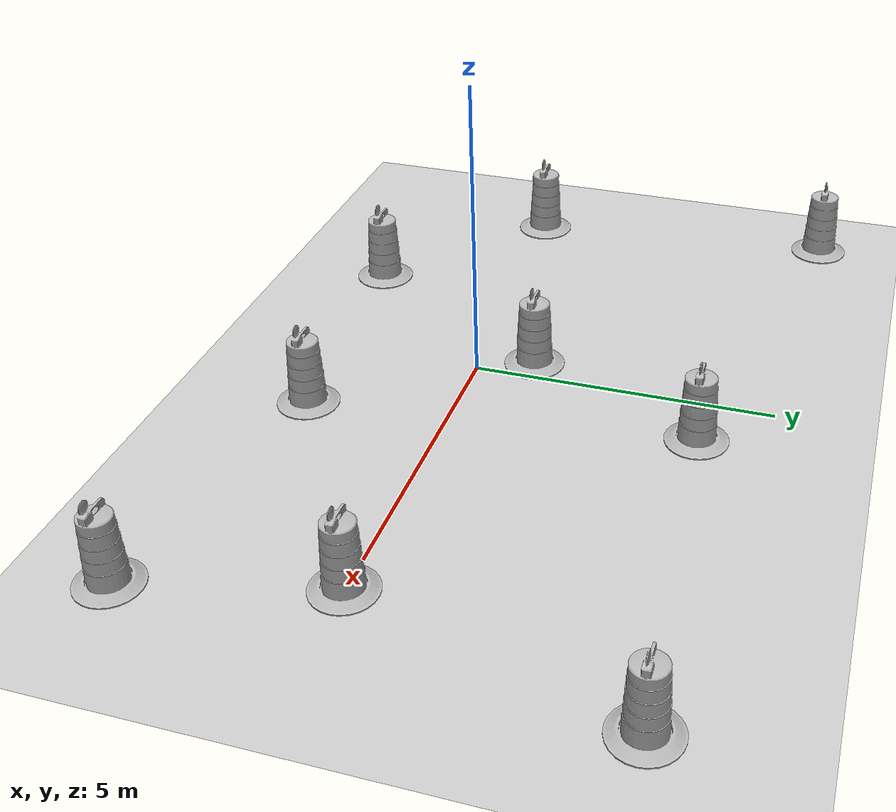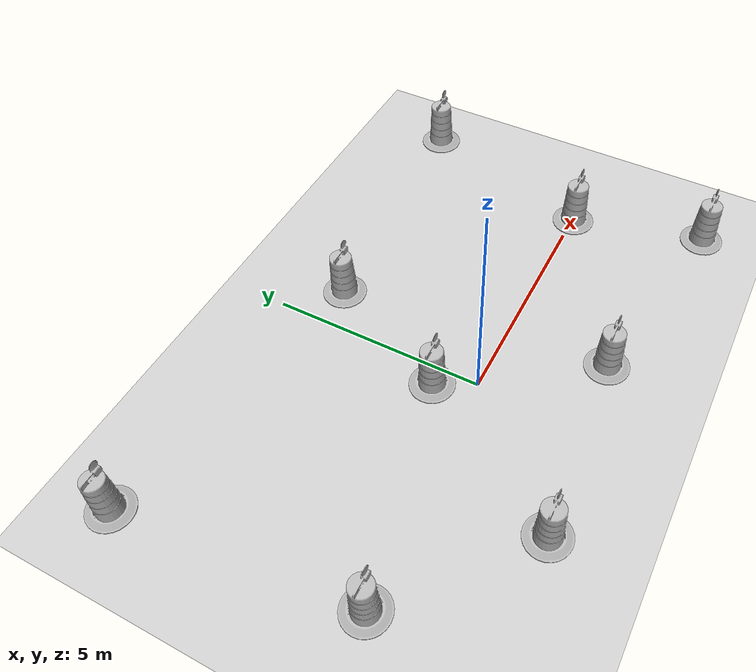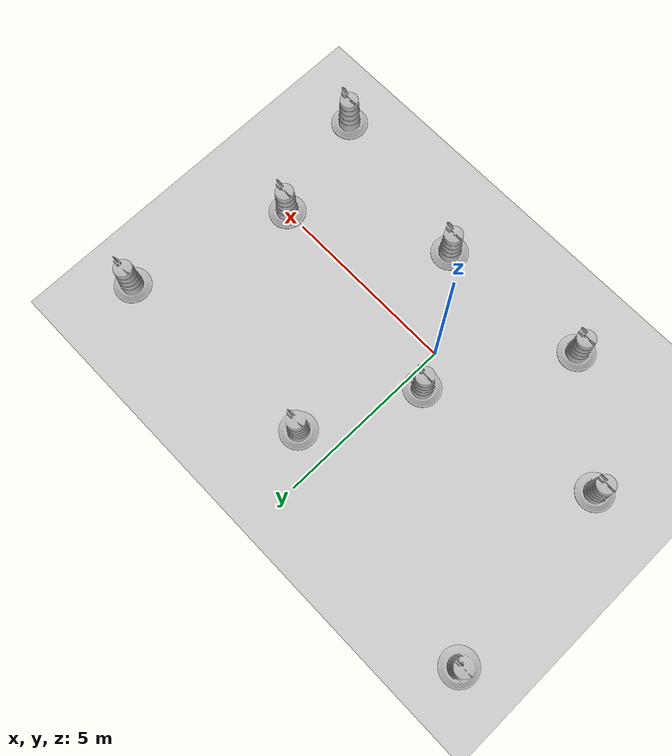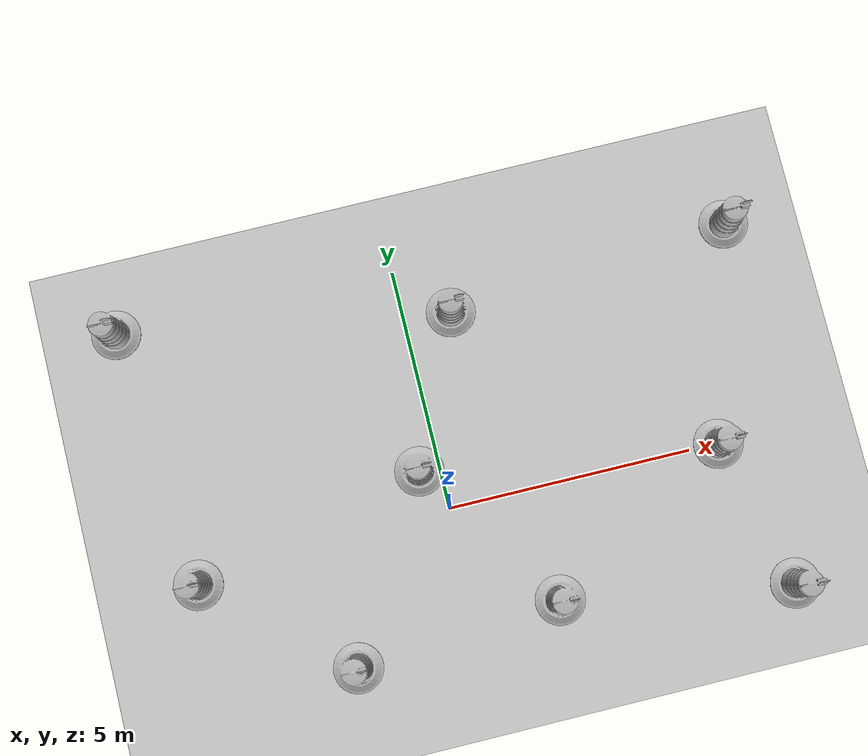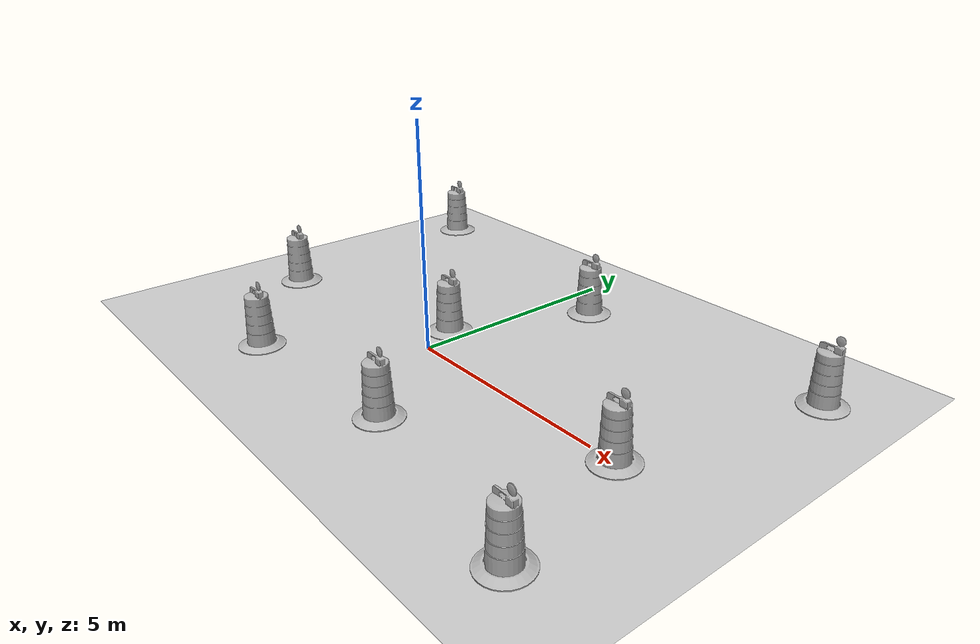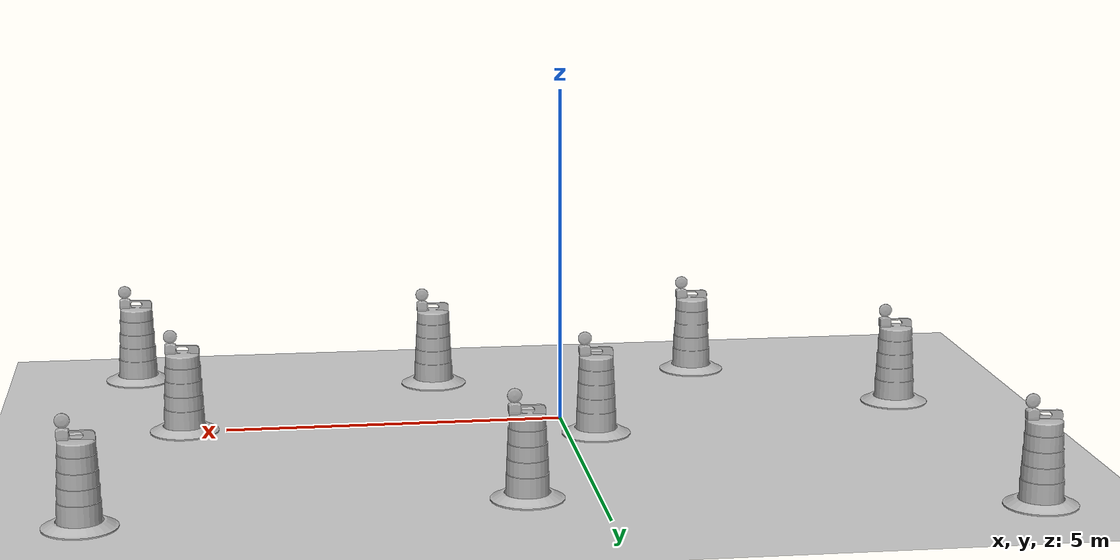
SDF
<sdf version="1.7">
 <world name="default">
  <light name="sun" type="directional">
   <pose>0 0 10 0 -0 0</pose>
   <diffuse>0.8 0.8 0.8 1</diffuse>
   <specular>0.2 0.2 0.2 1</specular>
   <attenuation>
    <range>1000</range>
    <constant>0.9</constant>
    <linear>0.01</linear>
    <quadratic>0.001</quadratic>
   </attenuation>
   <direction>-0.5 0.1 -0.9</direction>
   <spot><inner_angle>0</inner_angle><outer_angle>0</outer_angle><falloff>0</falloff></spot>
  </light>
  <model name="ground_plane">
   <static>1</static>
   <link name="link">
    <collision name="collision">
     <geometry><plane><normal>0 0 1</normal><size>100 100</size></plane></geometry>
     <surface>
      <contact><collide_bitmask>65535</collide_bitmask></contact>
      <friction><ode><mu>100</mu><mu2>50</mu2></ode></friction>
     </surface>
    </collision>
    <visual name="visual">
     <cast_shadows>0</cast_shadows>
     <geometry><plane><normal>0 0 1</normal><size>100 100</size></plane></geometry>
     <material>
      <script><uri>file://media/materials/scripts/gazebo.material</uri><name>Gazebo/Grey</name></script>
     </material>
    </visual>
   </link>
  </model>
  <gravity>0 0 -9.8</gravity>
  <magnetic_field>6e-06 2.3e-05 -4.2e-05</magnetic_field>
  <atmosphere type="adiabatic"/>
  <physics type="ode">
   <max_step_size>0.001</max_step_size>
   <real_time_factor>1</real_time_factor>
   <real_time_update_rate>1000</real_time_update_rate>
  </physics>
  <scene><ambient>0.4 0.4 0.4 1</ambient><background>0.7 0.7 0.7 1</background><shadows>1</shadows></scene>
  <audio><device>default</device></audio>
  <spherical_coordinates>
   <surface_model>EARTH_WGS84</surface_model>
   <latitude_deg>0</latitude_deg>
   <longitude_deg>0</longitude_deg>
   <elevation>0</elevation>
   <heading_deg>0</heading_deg>
  </spherical_coordinates>
  <model name="Construction Barrel">
   <link name="link">
    <inertial>
     <pose>0 0 0.4 0 -0 0</pose>
     <mass>500</mass>
     <inertia><ixx>51.2096</ixx><iyy>51.2096</iyy><izz>25</izz><ixy>0</ixy><ixz>0</ixz><iyz>0</iyz></inertia>
    </inertial>
    <collision name="collision">
     <geometry><mesh><uri>model://construction_barrel/meshes/construction_barrel.dae</uri></mesh></geometry>
    </collision>
    <visual name="visual">
     <geometry><mesh><uri>model://construction_barrel/meshes/construction_barrel.dae</uri></mesh></geometry>
    </visual>
   </link>
   <pose>-5.26744 -0.289459 0 0 -0 0</pose>
  </model>
  <model name="Construction Barrel_0">
   <link name="link">
    <inertial>
     <pose>0 0 0.4 0 -0 0</pose>
     <mass>500</mass>
     <inertia><ixx>51.2096</ixx><iyy>51.2096</iyy><izz>25</izz><ixy>0</ixy><ixz>0</ixz><iyz>0</iyz></inertia>
    </inertial>
    <collision name="collision">
     <geometry><mesh><uri>model://construction_barrel/meshes/construction_barrel.dae</uri></mesh></geometry>
    </collision>
    <visual name="visual">
     <geometry><mesh><uri>model://construction_barrel/meshes/construction_barrel.dae</uri></mesh></geometry>
    </visual>
   </link>
   <pose>0.979004 3.91115 0 0 -0 0</pose>
  </model>
  <model name="Construction Barrel_1">
   <link name="link">
    <inertial>
     <pose>0 0 0.4 0 -0 0</pose>
     <mass>500</mass>
     <inertia><ixx>51.2096</ixx><iyy>51.2096</iyy><izz>25</izz><ixy>0</ixy><ixz>0</ixz><iyz>0</iyz></inertia>
    </inertial>
    <collision name="collision">
     <geometry><mesh><uri>model://construction_barrel/meshes/construction_barrel.dae</uri></mesh></geometry>
    </collision>
    <visual name="visual">
     <geometry><mesh><uri>model://construction_barrel/meshes/construction_barrel.dae</uri></mesh></geometry>
    </visual>
   </link>
   <pose>1.72059 -2.3073 0 0 -0 0</pose>
  </model>
  <model name="Construction Barrel_2">
   <link name="link">
    <inertial>
     <pose>0 0 0.4 0 -0 0</pose>
     <mass>500</mass>
     <inertia><ixx>51.2096</ixx><iyy>51.2096</iyy><izz>25</izz><ixy>0</ixy><ixz>0</ixz><iyz>0</iyz></inertia>
    </inertial>
    <collision name="collision">
     <geometry><mesh><uri>model://construction_barrel/meshes/construction_barrel.dae</uri></mesh></geometry>
    </collision>
    <visual name="visual">
     <geometry><mesh><uri>model://construction_barrel/meshes/construction_barrel.dae</uri></mesh></geometry>
    </visual>
   </link>
   <pose>5.61655 -0.015693 0 0 -0 0</pose>
  </model>
  <model name="Construction Barrel_3">
   <link name="link">
    <inertial>
     <pose>0 0 0.4 0 -0 0</pose>
     <mass>500</mass>
     <inertia><ixx>51.2096</ixx><iyy>51.2096</iyy><izz>25</izz><ixy>0</ixy><ixz>0</ixz><iyz>0</iyz></inertia>
    </inertial>
    <collision name="collision">
     <geometry><mesh><uri>model://construction_barrel/meshes/construction_barrel.dae</uri></mesh></geometry>
    </collision>
    <visual name="visual">
     <geometry><mesh><uri>model://construction_barrel/meshes/construction_barrel.dae</uri></mesh></geometry>
    </visual>
   </link>
   <pose>-2.52103 -2.6554 0 0 -0 0</pose>
  </model>
  <model name="Construction Barrel_4">
   <link name="link">
    <inertial>
     <pose>0 0 0.4 0 -0 0</pose>
     <mass>500</mass>
     <inertia><ixx>51.2096</ixx><iyy>51.2096</iyy><izz>25</izz><ixy>0</ixy><ixz>0</ixz><iyz>0</iyz></inertia>
    </inertial>
    <collision name="collision">
     <geometry><mesh><uri>model://construction_barrel/meshes/construction_barrel.dae</uri></mesh></geometry>
    </collision>
    <visual name="visual">
     <geometry><mesh><uri>model://construction_barrel/meshes/construction_barrel.dae</uri></mesh></geometry>
    </visual>
   </link>
   <pose>6.89732 4.37126 0 0 -0 0</pose>
  </model>
  <model name="Construction Barrel_5">
   <link name="link">
    <inertial>
     <pose>0 0 0.4 0 -0 0</pose>
     <mass>500</mass>
     <inertia><ixx>51.2096</ixx><iyy>51.2096</iyy><izz>25</izz><ixy>0</ixy><ixz>0</ixz><iyz>0</iyz></inertia>
    </inertial>
    <collision name="collision">
     <geometry><mesh><uri>model://construction_barrel/meshes/construction_barrel.dae</uri></mesh></geometry>
    </collision>
    <visual name="visual">
     <geometry><mesh><uri>model://construction_barrel/meshes/construction_barrel.dae</uri></mesh></geometry>
    </visual>
   </link>
   <pose>-5.79846 5.08283 0 0 -0 0</pose>
  </model>
  <model name="Construction Barrel_6">
   <link name="link">
    <inertial>
     <pose>0 0 0.4 0 -0 0</pose>
     <mass>500</mass>
     <inertia><ixx>51.2096</ixx><iyy>51.2096</iyy><izz>25</izz><ixy>0</ixy><ixz>0</ixz><iyz>0</iyz></inertia>
    </inertial>
    <collision name="collision">
     <geometry><mesh><uri>model://construction_barrel/meshes/construction_barrel.dae</uri></mesh></geometry>
    </collision>
    <visual name="visual">
     <geometry><mesh><uri>model://construction_barrel/meshes/construction_barrel.dae</uri></mesh></geometry>
    </visual>
   </link>
   <pose>-0.416734 0.884902 0 0 -0 0</pose>
  </model>
  <model name="Construction Barrel_7">
   <link name="link">
    <inertial>
     <pose>0 0 0.4 0 -0 0</pose>
     <mass>500</mass>
     <inertia><ixx>51.2096</ixx><iyy>51.2096</iyy><izz>25</izz><ixy>0</ixy><ixz>0</ixz><iyz>0</iyz></inertia>
    </inertial>
    <collision name="collision">
     <geometry><mesh><uri>model://construction_barrel/meshes/construction_barrel.dae</uri></mesh></geometry>
    </collision>
    <visual name="visual">
     <geometry><mesh><uri>model://construction_barrel/meshes/construction_barrel.dae</uri></mesh></geometry>
    </visual>
   </link>
   <pose>6.39493 -3.10008 0 0 -0 0</pose>
  </model>
 </world>
</sdf>
